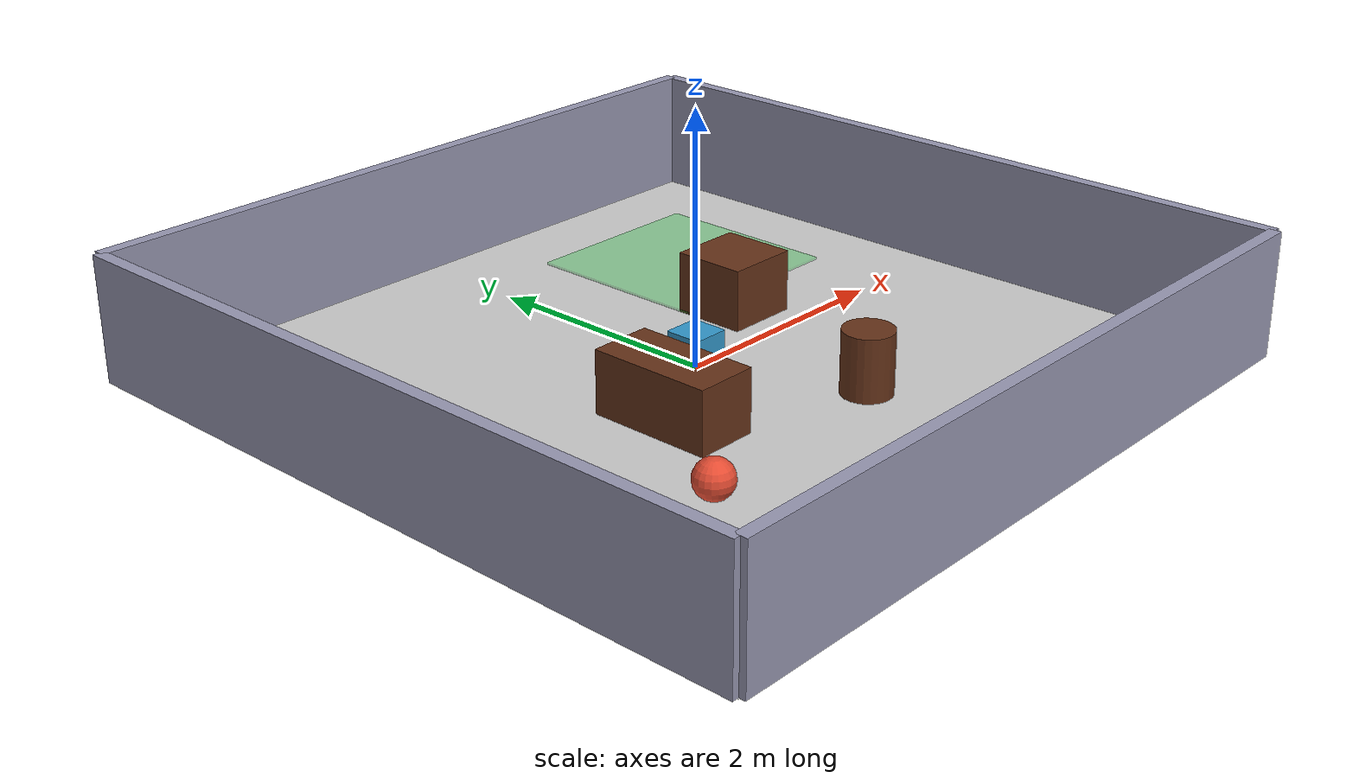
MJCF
<mujoco model="home_tabletop">
  <compiler angle="radian" autolimits="true"/>

  <option timestep="0.01" integrator="RK4" gravity="0 0 -9.81">
    <flag contact="enable"/>
  </option>

  <default>
    <joint damping="0.5" armature="0.01"/>
    <geom contype="1" conaffinity="1" friction="0.8 0.02 0.01"/>
  </default>

  <asset>
    <texture name="floor_tex" type="2d" builtin="flat" rgb1="0.8 0.8 0.8" rgb2="0.7 0.7 0.7" width="512" height="512"/>
    <material name="floor_mat" texture="floor_tex" specular="0.0" shininess="0.0"/>
    <material name="wall_mat" rgba="0.6 0.6 0.7 1" specular="0.1"/>
    <material name="obstacle_mat" rgba="0.4 0.2 0.1 1" specular="0.2"/>
    <material name="block_mat" rgba="0.2 0.6 0.8 1" specular="0.3"/>
    <material name="target_mat" rgba="0.2 0.8 0.3 0.4" specular="0.0"/>
    <material name="agent_mat" rgba="0.9 0.3 0.2 1" specular="0.5" shininess="0.8"/>
  </asset>

  <worldbody>
    <light name="main_light" pos="0 0 3" dir="0 0 -1" diffuse="0.8 0.8 0.8"/>

    <!-- Floor -->
    <geom name="floor" type="plane" size="3 3 0.1" pos="0 0 0" material="floor_mat"/>

    <!-- Walls -->
    <geom name="wall_n" type="box" size="3 0.05 0.5" pos="0 3 0.5" material="wall_mat" contype="0" conaffinity="0"/>
    <geom name="wall_s" type="box" size="3 0.05 0.5" pos="0 -3 0.5" material="wall_mat" contype="0" conaffinity="0"/>
    <geom name="wall_e" type="box" size="0.05 3 0.5" pos="3 0 0.5" material="wall_mat" contype="0" conaffinity="0"/>
    <geom name="wall_w" type="box" size="0.05 3 0.5" pos="-3 0 0.5" material="wall_mat" contype="0" conaffinity="0"/>

    <!-- Obstacles -->
    <geom name="obs1" type="box" size="0.3 0.3 0.25" pos="1.0 0.5 0.25" material="obstacle_mat"/>
    <geom name="obs2" type="box" size="0.25 0.5 0.25" pos="-0.8 -0.5 0.25" material="obstacle_mat"/>
    <geom name="obs3" type="cylinder" size="0.2 0.25" pos="0.5 -1.2 0.25" material="obstacle_mat"/>

    <!-- Target zone (visual only) -->
    <geom name="target_zone" type="box" size="0.8 0.8 0.01" pos="1.5 1.5 0.01" material="target_mat" contype="0" conaffinity="0"/>

    <!-- Movable block -->
    <body name="block" pos="0 0 0.15">
      <joint name="block_x" type="slide" axis="1 0 0" range="-2.8 2.8" damping="2.0"/>
      <joint name="block_y" type="slide" axis="0 1 0" range="-2.8 2.8" damping="2.0"/>
      <geom name="block_geom" type="box" size="0.15 0.15 0.15" material="block_mat" mass="1.0" friction="1.0 0.05 0.01"/>
    </body>

    <!-- Agent (point-mass sphere) -->
    <body name="agent" pos="-1.5 -1.5 0.2">
      <joint name="agent_x" type="slide" axis="1 0 0" range="-2.8 2.8" damping="0.1"/>
      <joint name="agent_y" type="slide" axis="0 1 0" range="-2.8 2.8" damping="0.1"/>
      <geom name="agent_geom" type="sphere" size="0.15" material="agent_mat" mass="1.0"/>
    </body>

    <!-- Overhead camera -->
    <camera name="overhead" pos="0 0 5" xyaxes="1 0 0 0 1 0" fovy="60"/>
  </worldbody>

  <actuator>
    <motor name="agent_fx" joint="agent_x" ctrlrange="-1.0 1.0" gear="10"/>
    <motor name="agent_fy" joint="agent_y" ctrlrange="-1.0 1.0" gear="10"/>
  </actuator>

  <sensor>
    <framepos name="agent_pos" objtype="body" objname="agent"/>
    <framepos name="block_pos" objtype="body" objname="block"/>
  </sensor>
</mujoco>
